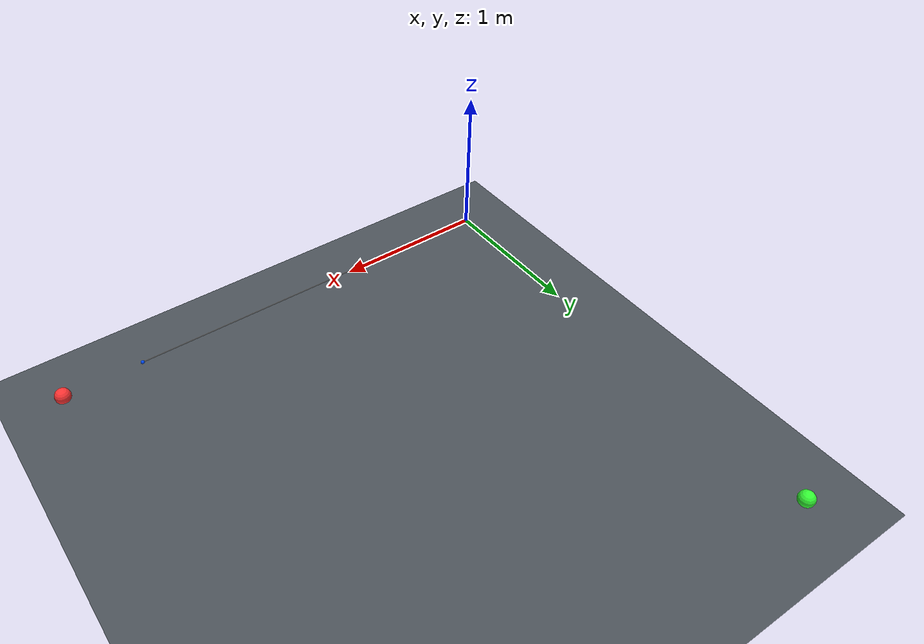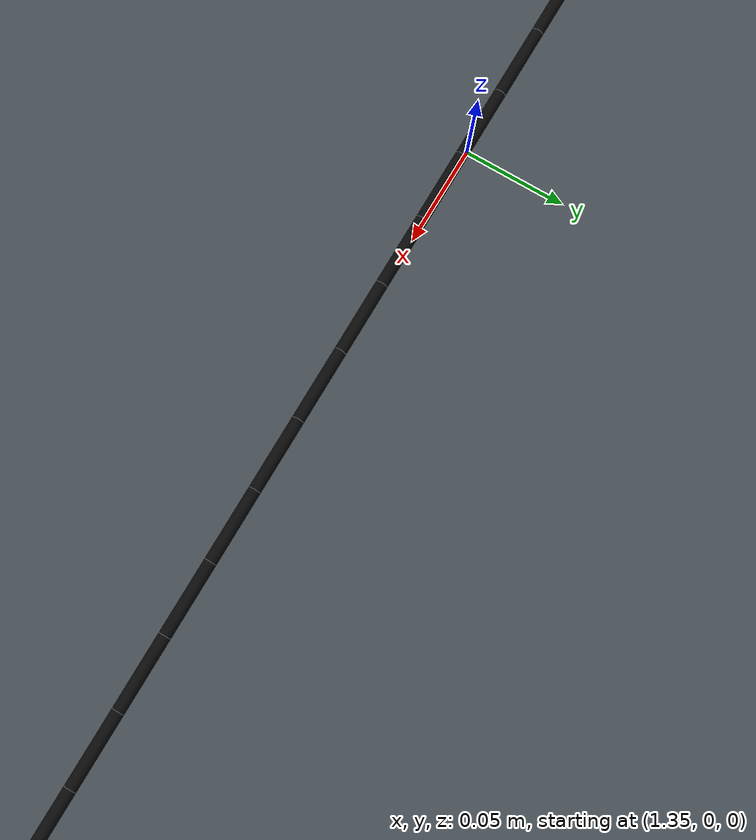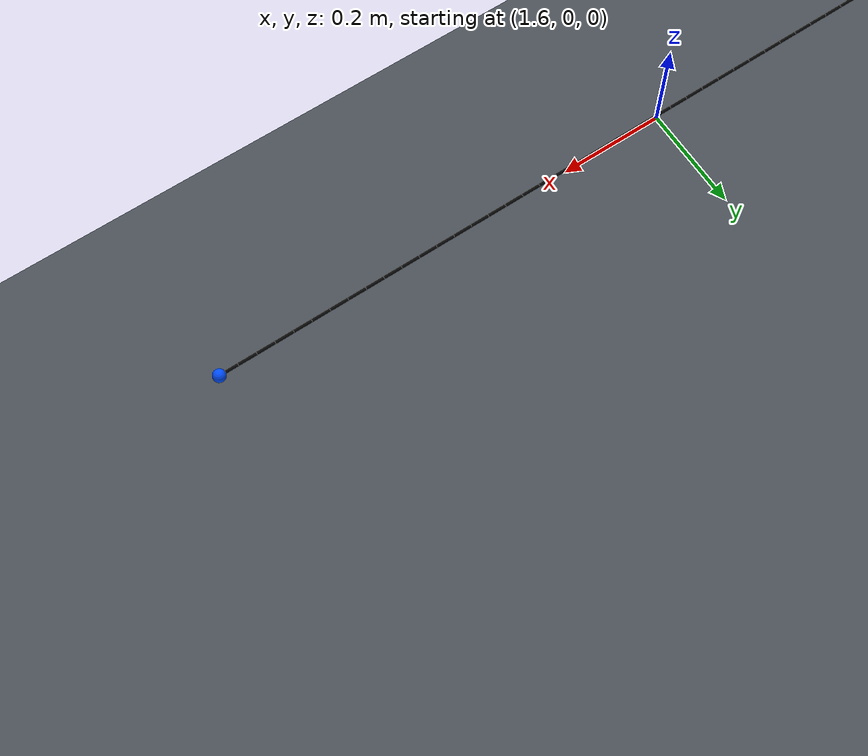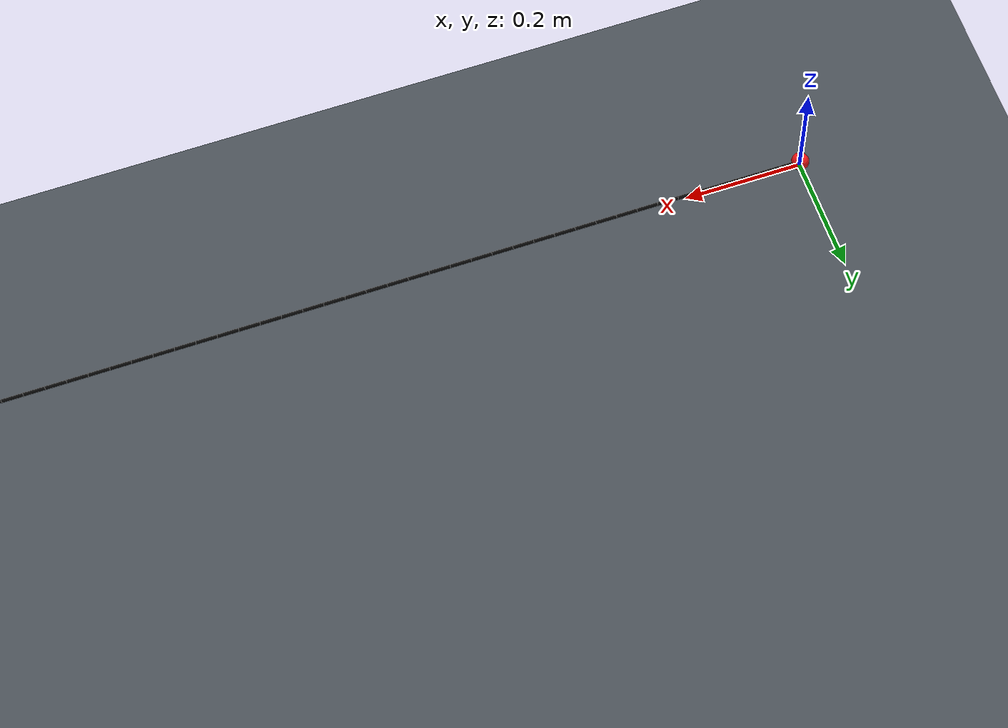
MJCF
<?xml version='1.0' encoding='utf-8'?>
<mujoco model="tether_static_n70">
  <compiler angle="radian" coordinate="local" />
  <option timestep="0.001" gravity="0 0 -9.80665" integrator="RK4" density="1.2" viscosity="0" />
  <default>
    <geom contype="1" conaffinity="1" condim="3" friction="1.0 0.05 0.05" />
    <site type="sphere" size="0.008" rgba="1 0 0 1" />
  </default>
  <visual>
    <headlight ambient="0.4 0.4 0.4" />
    <global offwidth="1280" offheight="720" />
  </visual>
  <asset>
    <texture name="grid" type="2d" builtin="checker" rgb1="0.25 0.28 0.30" rgb2="0.32 0.35 0.38" width="512" height="512" />
    <material name="grid" texture="grid" texrepeat="12 12" reflectance="0.05" />
  </asset>
  <worldbody>
    <light pos="0 0 6" dir="0 0 -1" diffuse="0.8 0.8 0.8" />
    <geom name="floor" type="plane" size="60 60 0.1" material="grid" pos="0 0 0" />
    <site name="east_marker" pos="3 0 0.02" size="0.05" rgba="1 0.2 0.2 1" />
    <site name="north_marker" pos="0 3 0.02" size="0.05" rgba="0.2 1 0.2 1" />
    <body name="tether_link_1" pos="0 0 0.01">
      <joint name="tether_joint_1" type="ball" damping="0.002" armature="1e-6" />
      <geom name="tether_geom_1" type="capsule" fromto="0 0 0 0.035714285714285712 0 0" size="0.0030000000000000001" mass="0.002142857142857143" contype="2" conaffinity="1" rgba="0.04 0.04 0.04 1" />
      <body name="tether_link_2" pos="0.035714285714285712 0 0">
        <joint name="tether_joint_2" type="ball" damping="0.002" armature="1e-6" />
        <geom name="tether_geom_2" type="capsule" fromto="0 0 0 0.035714285714285712 0 0" size="0.0030000000000000001" mass="0.002142857142857143" contype="2" conaffinity="1" rgba="0.04 0.04 0.04 1" />
        <body name="tether_link_3" pos="0.035714285714285712 0 0">
          <joint name="tether_joint_3" type="ball" damping="0.002" armature="1e-6" />
          <geom name="tether_geom_3" type="capsule" fromto="0 0 0 0.035714285714285712 0 0" size="0.0030000000000000001" mass="0.002142857142857143" contype="2" conaffinity="1" rgba="0.04 0.04 0.04 1" />
          <body name="tether_link_4" pos="0.035714285714285712 0 0">
            <joint name="tether_joint_4" type="ball" damping="0.002" armature="1e-6" />
            <geom name="tether_geom_4" type="capsule" fromto="0 0 0 0.035714285714285712 0 0" size="0.0030000000000000001" mass="0.002142857142857143" contype="2" conaffinity="1" rgba="0.04 0.04 0.04 1" />
            <body name="tether_link_5" pos="0.035714285714285712 0 0">
              <joint name="tether_joint_5" type="ball" damping="0.002" armature="1e-6" />
              <geom name="tether_geom_5" type="capsule" fromto="0 0 0 0.035714285714285698 0 0" size="0.0030000000000000001" mass="0.002142857142857143" contype="2" conaffinity="1" rgba="0.04 0.04 0.04 1" />
              <body name="tether_link_6" pos="0.035714285714285698 0 0">
                <joint name="tether_joint_6" type="ball" damping="0.002" armature="1e-6" />
                <geom name="tether_geom_6" type="capsule" fromto="0 0 0 0.035714285714285726 0 0" size="0.0030000000000000001" mass="0.002142857142857143" contype="2" conaffinity="1" rgba="0.04 0.04 0.04 1" />
                <body name="tether_link_7" pos="0.035714285714285726 0 0">
                  <joint name="tether_joint_7" type="ball" damping="0.002" armature="1e-6" />
                  <geom name="tether_geom_7" type="capsule" fromto="0 0 0 0.035714285714285726 0 0" size="0.0030000000000000001" mass="0.002142857142857143" contype="2" conaffinity="1" rgba="0.04 0.04 0.04 1" />
                  <body name="tether_link_8" pos="0.035714285714285726 0 0">
                    <joint name="tether_joint_8" type="ball" damping="0.002" armature="1e-6" />
                    <geom name="tether_geom_8" type="capsule" fromto="0 0 0 0.035714285714285698 0 0" size="0.0030000000000000001" mass="0.002142857142857143" contype="2" conaffinity="1" rgba="0.04 0.04 0.04 1" />
                    <body name="tether_link_9" pos="0.035714285714285698 0 0">
                      <joint name="tether_joint_9" type="ball" damping="0.002" armature="1e-6" />
                      <geom name="tether_geom_9" type="capsule" fromto="0 0 0 0.035714285714285698 0 0" size="0.0030000000000000001" mass="0.002142857142857143" contype="2" conaffinity="1" rgba="0.04 0.04 0.04 1" />
                      <body name="tether_link_10" pos="0.035714285714285698 0 0">
                        <joint name="tether_joint_10" type="ball" damping="0.002" armature="1e-6" />
                        <geom name="tether_geom_10" type="capsule" fromto="0 0 0 0.035714285714285698 0 0" size="0.0030000000000000001" mass="0.002142857142857143" contype="2" conaffinity="1" rgba="0.04 0.04 0.04 1" />
                        <body name="tether_link_11" pos="0.035714285714285698 0 0">
                          <joint name="tether_joint_11" type="ball" damping="0.002" armature="1e-6" />
                          <geom name="tether_geom_11" type="capsule" fromto="0 0 0 0.035714285714285754 0 0" size="0.0030000000000000001" mass="0.002142857142857143" contype="2" conaffinity="1" rgba="0.04 0.04 0.04 1" />
                          <body name="tether_link_12" pos="0.035714285714285754 0 0">
                            <joint name="tether_joint_12" type="ball" damping="0.002" armature="1e-6" />
                            <geom name="tether_geom_12" type="capsule" fromto="0 0 0 0.035714285714285698 0 0" size="0.0030000000000000001" mass="0.002142857142857143" contype="2" conaffinity="1" rgba="0.04 0.04 0.04 1" />
                            <body name="tether_link_13" pos="0.035714285714285698 0 0">
                              <joint name="tether_joint_13" type="ball" damping="0.002" armature="1e-6" />
                              <geom name="tether_geom_13" type="capsule" fromto="0 0 0 0.035714285714285698 0 0" size="0.0030000000000000001" mass="0.002142857142857143" contype="2" conaffinity="1" rgba="0.04 0.04 0.04 1" />
                              <body name="tether_link_14" pos="0.035714285714285698 0 0">
                                <joint name="tether_joint_14" type="ball" damping="0.002" armature="1e-6" />
                                <geom name="tether_geom_14" type="capsule" fromto="0 0 0 0.035714285714285754 0 0" size="0.0030000000000000001" mass="0.002142857142857143" contype="2" conaffinity="1" rgba="0.04 0.04 0.04 1" />
                                <body name="tether_link_15" pos="0.035714285714285754 0 0">
                                  <joint name="tether_joint_15" type="ball" damping="0.002" armature="1e-6" />
                                  <geom name="tether_geom_15" type="capsule" fromto="0 0 0 0.035714285714285698 0 0" size="0.0030000000000000001" mass="0.002142857142857143" contype="2" conaffinity="1" rgba="0.04 0.04 0.04 1" />
                                  <body name="tether_link_16" pos="0.035714285714285698 0 0">
                                    <joint name="tether_joint_16" type="ball" damping="0.002" armature="1e-6" />
                                    <geom name="tether_geom_16" type="capsule" fromto="0 0 0 0.035714285714285698 0 0" size="0.0030000000000000001" mass="0.002142857142857143" contype="2" conaffinity="1" rgba="0.04 0.04 0.04 1" />
                                    <body name="tether_link_17" pos="0.035714285714285698 0 0">
                                      <joint name="tether_joint_17" type="ball" damping="0.002" armature="1e-6" />
                                      <geom name="tether_geom_17" type="capsule" fromto="0 0 0 0.035714285714285698 0 0" size="0.0030000000000000001" mass="0.002142857142857143" contype="2" conaffinity="1" rgba="0.04 0.04 0.04 1" />
                                      <body name="tether_link_18" pos="0.035714285714285698 0 0">
                                        <joint name="tether_joint_18" type="ball" damping="0.002" armature="1e-6" />
                                        <geom name="tether_geom_18" type="capsule" fromto="0 0 0 0.035714285714285698 0 0" size="0.0030000000000000001" mass="0.002142857142857143" contype="2" conaffinity="1" rgba="0.04 0.04 0.04 1" />
                                        <body name="tether_link_19" pos="0.035714285714285698 0 0">
                                          <joint name="tether_joint_19" type="ball" damping="0.002" armature="1e-6" />
                                          <geom name="tether_geom_19" type="capsule" fromto="0 0 0 0.035714285714285698 0 0" size="0.0030000000000000001" mass="0.002142857142857143" contype="2" conaffinity="1" rgba="0.04 0.04 0.04 1" />
                                          <body name="tether_link_20" pos="0.035714285714285698 0 0">
                                            <joint name="tether_joint_20" type="ball" damping="0.002" armature="1e-6" />
                                            <geom name="tether_geom_20" type="capsule" fromto="0 0 0 0.035714285714285698 0 0" size="0.0030000000000000001" mass="0.002142857142857143" contype="2" conaffinity="1" rgba="0.04 0.04 0.04 1" />
                                            <body name="tether_link_21" pos="0.035714285714285698 0 0">
                                              <joint name="tether_joint_21" type="ball" damping="0.002" armature="1e-6" />
                                              <geom name="tether_geom_21" type="capsule" fromto="0 0 0 0.035714285714285809 0 0" size="0.0030000000000000001" mass="0.002142857142857143" contype="2" conaffinity="1" rgba="0.04 0.04 0.04 1" />
                                              <body name="tether_link_22" pos="0.035714285714285809 0 0">
                                                <joint name="tether_joint_22" type="ball" damping="0.002" armature="1e-6" />
                                                <geom name="tether_geom_22" type="capsule" fromto="0 0 0 0.035714285714285698 0 0" size="0.0030000000000000001" mass="0.002142857142857143" contype="2" conaffinity="1" rgba="0.04 0.04 0.04 1" />
                                                <body name="tether_link_23" pos="0.035714285714285698 0 0">
                                                  <joint name="tether_joint_23" type="ball" damping="0.002" armature="1e-6" />
                                                  <geom name="tether_geom_23" type="capsule" fromto="0 0 0 0.035714285714285698 0 0" size="0.0030000000000000001" mass="0.002142857142857143" contype="2" conaffinity="1" rgba="0.04 0.04 0.04 1" />
                                                  <body name="tether_link_24" pos="0.035714285714285698 0 0">
                                                    <joint name="tether_joint_24" type="ball" damping="0.002" armature="1e-6" />
                                                    <geom name="tether_geom_24" type="capsule" fromto="0 0 0 0.035714285714285698 0 0" size="0.0030000000000000001" mass="0.002142857142857143" contype="2" conaffinity="1" rgba="0.04 0.04 0.04 1" />
                                                    <body name="tether_link_25" pos="0.035714285714285698 0 0">
                                                      <joint name="tether_joint_25" type="ball" damping="0.002" armature="1e-6" />
                                                      <geom name="tether_geom_25" type="capsule" fromto="0 0 0 0.035714285714285698 0 0" size="0.0030000000000000001" mass="0.002142857142857143" contype="2" conaffinity="1" rgba="0.04 0.04 0.04 1" />
                                                      <body name="tether_link_26" pos="0.035714285714285698 0 0">
                                                        <joint name="tether_joint_26" type="ball" damping="0.002" armature="1e-6" />
                                                        <geom name="tether_geom_26" type="capsule" fromto="0 0 0 0.035714285714285698 0 0" size="0.0030000000000000001" mass="0.002142857142857143" contype="2" conaffinity="1" rgba="0.04 0.04 0.04 1" />
                                                        <body name="tether_link_27" pos="0.035714285714285698 0 0">
                                                          <joint name="tether_joint_27" type="ball" damping="0.002" armature="1e-6" />
                                                          <geom name="tether_geom_27" type="capsule" fromto="0 0 0 0.035714285714285698 0 0" size="0.0030000000000000001" mass="0.002142857142857143" contype="2" conaffinity="1" rgba="0.04 0.04 0.04 1" />
                                                          <body name="tether_link_28" pos="0.035714285714285698 0 0">
                                                            <joint name="tether_joint_28" type="ball" damping="0.002" armature="1e-6" />
                                                            <geom name="tether_geom_28" type="capsule" fromto="0 0 0 0.035714285714285809 0 0" size="0.0030000000000000001" mass="0.002142857142857143" contype="2" conaffinity="1" rgba="0.04 0.04 0.04 1" />
                                                            <body name="tether_link_29" pos="0.035714285714285809 0 0">
                                                              <joint name="tether_joint_29" type="ball" damping="0.002" armature="1e-6" />
                                                              <geom name="tether_geom_29" type="capsule" fromto="0 0 0 0.035714285714285587 0 0" size="0.0030000000000000001" mass="0.002142857142857143" contype="2" conaffinity="1" rgba="0.04 0.04 0.04 1" />
                                                              <body name="tether_link_30" pos="0.035714285714285587 0 0">
                                                                <joint name="tether_joint_30" type="ball" damping="0.002" armature="1e-6" />
                                                                <geom name="tether_geom_30" type="capsule" fromto="0 0 0 0.035714285714285809 0 0" size="0.0030000000000000001" mass="0.002142857142857143" contype="2" conaffinity="1" rgba="0.04 0.04 0.04 1" />
                                                                <body name="tether_link_31" pos="0.035714285714285809 0 0">
                                                                  <joint name="tether_joint_31" type="ball" damping="0.002" armature="1e-6" />
                                                                  <geom name="tether_geom_31" type="capsule" fromto="0 0 0 0.035714285714285587 0 0" size="0.0030000000000000001" mass="0.002142857142857143" contype="2" conaffinity="1" rgba="0.04 0.04 0.04 1" />
                                                                  <body name="tether_link_32" pos="0.035714285714285587 0 0">
                                                                    <joint name="tether_joint_32" type="ball" damping="0.002" armature="1e-6" />
                                                                    <geom name="tether_geom_32" type="capsule" fromto="0 0 0 0.035714285714285809 0 0" size="0.0030000000000000001" mass="0.002142857142857143" contype="2" conaffinity="1" rgba="0.04 0.04 0.04 1" />
                                                                    <body name="tether_link_33" pos="0.035714285714285809 0 0">
                                                                      <joint name="tether_joint_33" type="ball" damping="0.002" armature="1e-6" />
                                                                      <geom name="tether_geom_33" type="capsule" fromto="0 0 0 0.035714285714285809 0 0" size="0.0030000000000000001" mass="0.002142857142857143" contype="2" conaffinity="1" rgba="0.04 0.04 0.04 1" />
                                                                      <body name="tether_link_34" pos="0.035714285714285809 0 0">
                                                                        <joint name="tether_joint_34" type="ball" damping="0.002" armature="1e-6" />
                                                                        <geom name="tether_geom_34" type="capsule" fromto="0 0 0 0.035714285714285587 0 0" size="0.0030000000000000001" mass="0.002142857142857143" contype="2" conaffinity="1" rgba="0.04 0.04 0.04 1" />
                                                                        <body name="tether_link_35" pos="0.035714285714285587 0 0">
                                                                          <joint name="tether_joint_35" type="ball" damping="0.002" armature="1e-6" />
                                                                          <geom name="tether_geom_35" type="capsule" fromto="0 0 0 0.035714285714285809 0 0" size="0.0030000000000000001" mass="0.002142857142857143" contype="2" conaffinity="1" rgba="0.04 0.04 0.04 1" />
                                                                          <body name="tether_link_36" pos="0.035714285714285809 0 0">
                                                                            <joint name="tether_joint_36" type="ball" damping="0.002" armature="1e-6" />
                                                                            <geom name="tether_geom_36" type="capsule" fromto="0 0 0 0.035714285714285587 0 0" size="0.0030000000000000001" mass="0.002142857142857143" contype="2" conaffinity="1" rgba="0.04 0.04 0.04 1" />
                                                                            <body name="tether_link_37" pos="0.035714285714285587 0 0">
                                                                              <joint name="tether_joint_37" type="ball" damping="0.002" armature="1e-6" />
                                                                              <geom name="tether_geom_37" type="capsule" fromto="0 0 0 0.035714285714285809 0 0" size="0.0030000000000000001" mass="0.002142857142857143" contype="2" conaffinity="1" rgba="0.04 0.04 0.04 1" />
                                                                              <body name="tether_link_38" pos="0.035714285714285809 0 0">
                                                                                <joint name="tether_joint_38" type="ball" damping="0.002" armature="1e-6" />
                                                                                <geom name="tether_geom_38" type="capsule" fromto="0 0 0 0.035714285714285587 0 0" size="0.0030000000000000001" mass="0.002142857142857143" contype="2" conaffinity="1" rgba="0.04 0.04 0.04 1" />
                                                                                <body name="tether_link_39" pos="0.035714285714285587 0 0">
                                                                                  <joint name="tether_joint_39" type="ball" damping="0.002" armature="1e-6" />
                                                                                  <geom name="tether_geom_39" type="capsule" fromto="0 0 0 0.035714285714285809 0 0" size="0.0030000000000000001" mass="0.002142857142857143" contype="2" conaffinity="1" rgba="0.04 0.04 0.04 1" />
                                                                                  <body name="tether_link_40" pos="0.035714285714285809 0 0">
                                                                                    <joint name="tether_joint_40" type="ball" damping="0.002" armature="1e-6" />
                                                                                    <geom name="tether_geom_40" type="capsule" fromto="0 0 0 0.035714285714285587 0 0" size="0.0030000000000000001" mass="0.002142857142857143" contype="2" conaffinity="1" rgba="0.04 0.04 0.04 1" />
                                                                                    <body name="tether_link_41" pos="0.035714285714285587 0 0">
                                                                                      <joint name="tether_joint_41" type="ball" damping="0.002" armature="1e-6" />
                                                                                      <geom name="tether_geom_41" type="capsule" fromto="0 0 0 0.035714285714285809 0 0" size="0.0030000000000000001" mass="0.002142857142857143" contype="2" conaffinity="1" rgba="0.04 0.04 0.04 1" />
                                                                                      <body name="tether_link_42" pos="0.035714285714285809 0 0">
                                                                                        <joint name="tether_joint_42" type="ball" damping="0.002" armature="1e-6" />
                                                                                        <geom name="tether_geom_42" type="capsule" fromto="0 0 0 0.035714285714285809 0 0" size="0.0030000000000000001" mass="0.002142857142857143" contype="2" conaffinity="1" rgba="0.04 0.04 0.04 1" />
                                                                                        <body name="tether_link_43" pos="0.035714285714285809 0 0">
                                                                                          <joint name="tether_joint_43" type="ball" damping="0.002" armature="1e-6" />
                                                                                          <geom name="tether_geom_43" type="capsule" fromto="0 0 0 0.035714285714285587 0 0" size="0.0030000000000000001" mass="0.002142857142857143" contype="2" conaffinity="1" rgba="0.04 0.04 0.04 1" />
                                                                                          <body name="tether_link_44" pos="0.035714285714285587 0 0">
                                                                                            <joint name="tether_joint_44" type="ball" damping="0.002" armature="1e-6" />
                                                                                            <geom name="tether_geom_44" type="capsule" fromto="0 0 0 0.035714285714285809 0 0" size="0.0030000000000000001" mass="0.002142857142857143" contype="2" conaffinity="1" rgba="0.04 0.04 0.04 1" />
                                                                                            <body name="tether_link_45" pos="0.035714285714285809 0 0">
                                                                                              <joint name="tether_joint_45" type="ball" damping="0.002" armature="1e-6" />
                                                                                              <geom name="tether_geom_45" type="capsule" fromto="0 0 0 0.035714285714285587 0 0" size="0.0030000000000000001" mass="0.002142857142857143" contype="2" conaffinity="1" rgba="0.04 0.04 0.04 1" />
                                                                                              <body name="tether_link_46" pos="0.035714285714285587 0 0">
                                                                                                <joint name="tether_joint_46" type="ball" damping="0.002" armature="1e-6" />
                                                                                                <geom name="tether_geom_46" type="capsule" fromto="0 0 0 0.035714285714285809 0 0" size="0.0030000000000000001" mass="0.002142857142857143" contype="2" conaffinity="1" rgba="0.04 0.04 0.04 1" />
                                                                                                <body name="tether_link_47" pos="0.035714285714285809 0 0">
                                                                                                  <joint name="tether_joint_47" type="ball" damping="0.002" armature="1e-6" />
                                                                                                  <geom name="tether_geom_47" type="capsule" fromto="0 0 0 0.035714285714285587 0 0" size="0.0030000000000000001" mass="0.002142857142857143" contype="2" conaffinity="1" rgba="0.04 0.04 0.04 1" />
                                                                                                  <body name="tether_link_48" pos="0.035714285714285587 0 0">
                                                                                                    <joint name="tether_joint_48" type="ball" damping="0.002" armature="1e-6" />
                                                                                                    <geom name="tether_geom_48" type="capsule" fromto="0 0 0 0.035714285714285809 0 0" size="0.0030000000000000001" mass="0.002142857142857143" contype="2" conaffinity="1" rgba="0.04 0.04 0.04 1" />
                                                                                                    <body name="tether_link_49" pos="0.035714285714285809 0 0">
                                                                                                      <joint name="tether_joint_49" type="ball" damping="0.002" armature="1e-6" />
                                                                                                      <geom name="tether_geom_49" type="capsule" fromto="0 0 0 0.035714285714285809 0 0" size="0.0030000000000000001" mass="0.002142857142857143" contype="2" conaffinity="1" rgba="0.04 0.04 0.04 1" />
                                                                                                      <body name="tether_link_50" pos="0.035714285714285809 0 0">
                                                                                                        <joint name="tether_joint_50" type="ball" damping="0.002" armature="1e-6" />
                                                                                                        <geom name="tether_geom_50" type="capsule" fromto="0 0 0 0.035714285714285587 0 0" size="0.0030000000000000001" mass="0.002142857142857143" contype="2" conaffinity="1" rgba="0.04 0.04 0.04 1" />
                                                                                                        <body name="tether_link_51" pos="0.035714285714285587 0 0">
                                                                                                          <joint name="tether_joint_51" type="ball" damping="0.002" armature="1e-6" />
                                                                                                          <geom name="tether_geom_51" type="capsule" fromto="0 0 0 0.035714285714285809 0 0" size="0.0030000000000000001" mass="0.002142857142857143" contype="2" conaffinity="1" rgba="0.04 0.04 0.04 1" />
                                                                                                          <body name="tether_link_52" pos="0.035714285714285809 0 0">
                                                                                                            <joint name="tether_joint_52" type="ball" damping="0.002" armature="1e-6" />
                                                                                                            <geom name="tether_geom_52" type="capsule" fromto="0 0 0 0.035714285714285587 0 0" size="0.0030000000000000001" mass="0.002142857142857143" contype="2" conaffinity="1" rgba="0.04 0.04 0.04 1" />
                                                                                                            <body name="tether_link_53" pos="0.035714285714285587 0 0">
                                                                                                              <joint name="tether_joint_53" type="ball" damping="0.002" armature="1e-6" />
                                                                                                              <geom name="tether_geom_53" type="capsule" fromto="0 0 0 0.035714285714285809 0 0" size="0.0030000000000000001" mass="0.002142857142857143" contype="2" conaffinity="1" rgba="0.04 0.04 0.04 1" />
                                                                                                              <body name="tether_link_54" pos="0.035714285714285809 0 0">
                                                                                                                <joint name="tether_joint_54" type="ball" damping="0.002" armature="1e-6" />
                                                                                                                <geom name="tether_geom_54" type="capsule" fromto="0 0 0 0.035714285714285587 0 0" size="0.0030000000000000001" mass="0.002142857142857143" contype="2" conaffinity="1" rgba="0.04 0.04 0.04 1" />
                                                                                                                <body name="tether_link_55" pos="0.035714285714285587 0 0">
                                                                                                                  <joint name="tether_joint_55" type="ball" damping="0.002" armature="1e-6" />
                                                                                                                  <geom name="tether_geom_55" type="capsule" fromto="0 0 0 0.035714285714285809 0 0" size="0.0030000000000000001" mass="0.002142857142857143" contype="2" conaffinity="1" rgba="0.04 0.04 0.04 1" />
                                                                                                                  <body name="tether_link_56" pos="0.035714285714285809 0 0">
                                                                                                                    <joint name="tether_joint_56" type="ball" damping="0.002" armature="1e-6" />
                                                                                                                    <geom name="tether_geom_56" type="capsule" fromto="0 0 0 0.035714285714285809 0 0" size="0.0030000000000000001" mass="0.002142857142857143" contype="2" conaffinity="1" rgba="0.04 0.04 0.04 1" />
                                                                                                                    <body name="tether_link_57" pos="0.035714285714285809 0 0">
                                                                                                                      <joint name="tether_joint_57" type="ball" damping="0.002" armature="1e-6" />
                                                                                                                      <geom name="tether_geom_57" type="capsule" fromto="0 0 0 0.035714285714285587 0 0" size="0.0030000000000000001" mass="0.002142857142857143" contype="2" conaffinity="1" rgba="0.04 0.04 0.04 1" />
                                                                                                                      <body name="tether_link_58" pos="0.035714285714285587 0 0">
                                                                                                                        <joint name="tether_joint_58" type="ball" damping="0.002" armature="1e-6" />
                                                                                                                        <geom name="tether_geom_58" type="capsule" fromto="0 0 0 0.035714285714285587 0 0" size="0.0030000000000000001" mass="0.002142857142857143" contype="2" conaffinity="1" rgba="0.04 0.04 0.04 1" />
                                                                                                                        <body name="tether_link_59" pos="0.035714285714285587 0 0">
                                                                                                                          <joint name="tether_joint_59" type="ball" damping="0.002" armature="1e-6" />
                                                                                                                          <geom name="tether_geom_59" type="capsule" fromto="0 0 0 0.035714285714286031 0 0" size="0.0030000000000000001" mass="0.002142857142857143" contype="2" conaffinity="1" rgba="0.04 0.04 0.04 1" />
                                                                                                                          <body name="tether_link_60" pos="0.035714285714286031 0 0">
                                                                                                                            <joint name="tether_joint_60" type="ball" damping="0.002" armature="1e-6" />
                                                                                                                            <geom name="tether_geom_60" type="capsule" fromto="0 0 0 0.035714285714285587 0 0" size="0.0030000000000000001" mass="0.002142857142857143" contype="2" conaffinity="1" rgba="0.04 0.04 0.04 1" />
                                                                                                                            <body name="tether_link_61" pos="0.035714285714285587 0 0">
                                                                                                                              <joint name="tether_joint_61" type="ball" damping="0.002" armature="1e-6" />
                                                                                                                              <geom name="tether_geom_61" type="capsule" fromto="0 0 0 0.035714285714285587 0 0" size="0.0030000000000000001" mass="0.002142857142857143" contype="2" conaffinity="1" rgba="0.04 0.04 0.04 1" />
                                                                                                                              <body name="tether_link_62" pos="0.035714285714285587 0 0">
                                                                                                                                <joint name="tether_joint_62" type="ball" damping="0.002" armature="1e-6" />
                                                                                                                                <geom name="tether_geom_62" type="capsule" fromto="0 0 0 0.035714285714285587 0 0" size="0.0030000000000000001" mass="0.002142857142857143" contype="2" conaffinity="1" rgba="0.04 0.04 0.04 1" />
                                                                                                                                <body name="tether_link_63" pos="0.035714285714285587 0 0">
                                                                                                                                  <joint name="tether_joint_63" type="ball" damping="0.002" armature="1e-6" />
                                                                                                                                  <geom name="tether_geom_63" type="capsule" fromto="0 0 0 0.035714285714286031 0 0" size="0.0030000000000000001" mass="0.002142857142857143" contype="2" conaffinity="1" rgba="0.04 0.04 0.04 1" />
                                                                                                                                  <body name="tether_link_64" pos="0.035714285714286031 0 0">
                                                                                                                                    <joint name="tether_joint_64" type="ball" damping="0.002" armature="1e-6" />
                                                                                                                                    <geom name="tether_geom_64" type="capsule" fromto="0 0 0 0.035714285714285587 0 0" size="0.0030000000000000001" mass="0.002142857142857143" contype="2" conaffinity="1" rgba="0.04 0.04 0.04 1" />
                                                                                                                                    <body name="tether_link_65" pos="0.035714285714285587 0 0">
                                                                                                                                      <joint name="tether_joint_65" type="ball" damping="0.002" armature="1e-6" />
                                                                                                                                      <geom name="tether_geom_65" type="capsule" fromto="0 0 0 0.035714285714285587 0 0" size="0.0030000000000000001" mass="0.002142857142857143" contype="2" conaffinity="1" rgba="0.04 0.04 0.04 1" />
                                                                                                                                      <body name="tether_link_66" pos="0.035714285714285587 0 0">
                                                                                                                                        <joint name="tether_joint_66" type="ball" damping="0.002" armature="1e-6" />
                                                                                                                                        <geom name="tether_geom_66" type="capsule" fromto="0 0 0 0.035714285714286031 0 0" size="0.0030000000000000001" mass="0.002142857142857143" contype="2" conaffinity="1" rgba="0.04 0.04 0.04 1" />
                                                                                                                                        <body name="tether_link_67" pos="0.035714285714286031 0 0">
                                                                                                                                          <joint name="tether_joint_67" type="ball" damping="0.002" armature="1e-6" />
                                                                                                                                          <geom name="tether_geom_67" type="capsule" fromto="0 0 0 0.035714285714285587 0 0" size="0.0030000000000000001" mass="0.002142857142857143" contype="2" conaffinity="1" rgba="0.04 0.04 0.04 1" />
                                                                                                                                          <body name="tether_link_68" pos="0.035714285714285587 0 0">
                                                                                                                                            <joint name="tether_joint_68" type="ball" damping="0.002" armature="1e-6" />
                                                                                                                                            <geom name="tether_geom_68" type="capsule" fromto="0 0 0 0.035714285714285587 0 0" size="0.0030000000000000001" mass="0.002142857142857143" contype="2" conaffinity="1" rgba="0.04 0.04 0.04 1" />
                                                                                                                                            <body name="tether_link_69" pos="0.035714285714285587 0 0">
                                                                                                                                              <joint name="tether_joint_69" type="ball" damping="0.002" armature="1e-6" />
                                                                                                                                              <geom name="tether_geom_69" type="capsule" fromto="0 0 0 0.035714285714285587 0 0" size="0.0030000000000000001" mass="0.002142857142857143" contype="2" conaffinity="1" rgba="0.04 0.04 0.04 1" />
                                                                                                                                              <body name="tether_link_70" pos="0.035714285714285587 0 0">
                                                                                                                                                <joint name="tether_joint_70" type="ball" damping="0.002" armature="1e-6" />
                                                                                                                                                <geom name="tether_geom_70" type="capsule" fromto="0 0 0 0.035714285714286031 0 0" size="0.0030000000000000001" mass="0.002142857142857143" contype="2" conaffinity="1" rgba="0.04 0.04 0.04 1" />
                                                                                                                                                <site name="tether_endpoint" pos="0.035714285714286031 0 0" size="0.012" rgba="0 0.3 1 1" />
                                                                                                                                              </body>
                                                                                                                                            </body>
                                                                                                                                          </body>
                                                                                                                                        </body>
                                                                                                                                      </body>
                                                                                                                                    </body>
                                                                                                                                  </body>
                                                                                                                                </body>
                                                                                                                              </body>
                                                                                                                            </body>
                                                                                                                          </body>
                                                                                                                        </body>
                                                                                                                      </body>
                                                                                                                    </body>
                                                                                                                  </body>
                                                                                                                </body>
                                                                                                              </body>
                                                                                                            </body>
                                                                                                          </body>
                                                                                                        </body>
                                                                                                      </body>
                                                                                                    </body>
                                                                                                  </body>
                                                                                                </body>
                                                                                              </body>
                                                                                            </body>
                                                                                          </body>
                                                                                        </body>
                                                                                      </body>
                                                                                    </body>
                                                                                  </body>
                                                                                </body>
                                                                              </body>
                                                                            </body>
                                                                          </body>
                                                                        </body>
                                                                      </body>
                                                                    </body>
                                                                  </body>
                                                                </body>
                                                              </body>
                                                            </body>
                                                          </body>
                                                        </body>
                                                      </body>
                                                    </body>
                                                  </body>
                                                </body>
                                              </body>
                                            </body>
                                          </body>
                                        </body>
                                      </body>
                                    </body>
                                  </body>
                                </body>
                              </body>
                            </body>
                          </body>
                        </body>
                      </body>
                    </body>
                  </body>
                </body>
              </body>
            </body>
          </body>
        </body>
      </body>
    </body>
    <site name="tether_anchor" pos="0 0 0.01" size="0.015" rgba="1 0.1 0.1 1" />
  </worldbody>
</mujoco>
